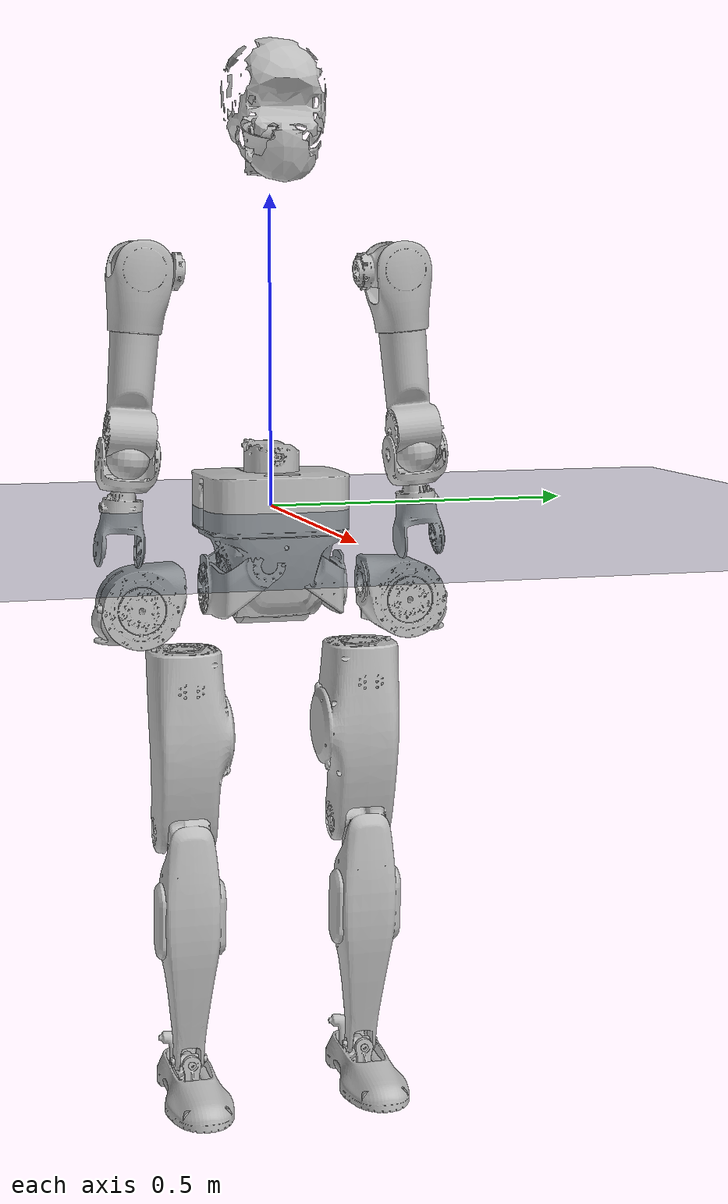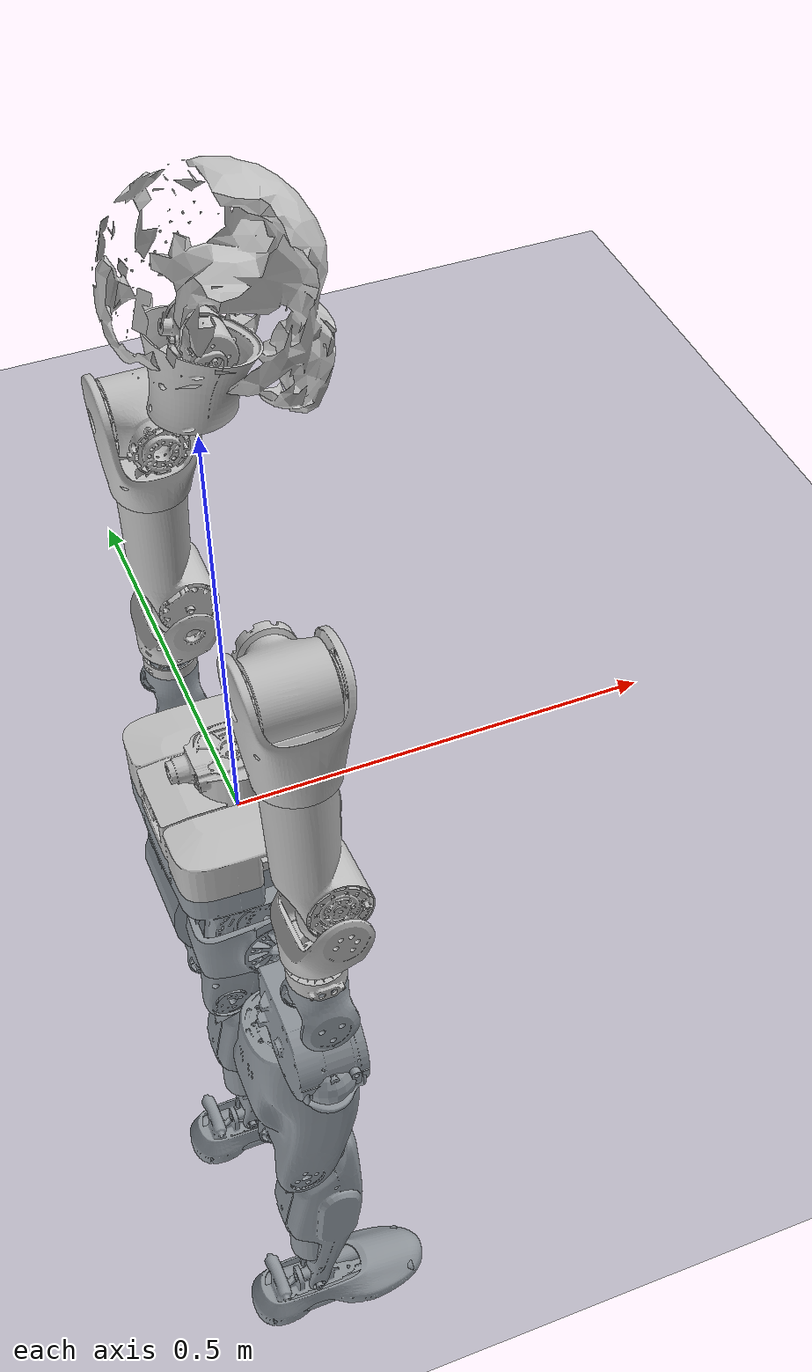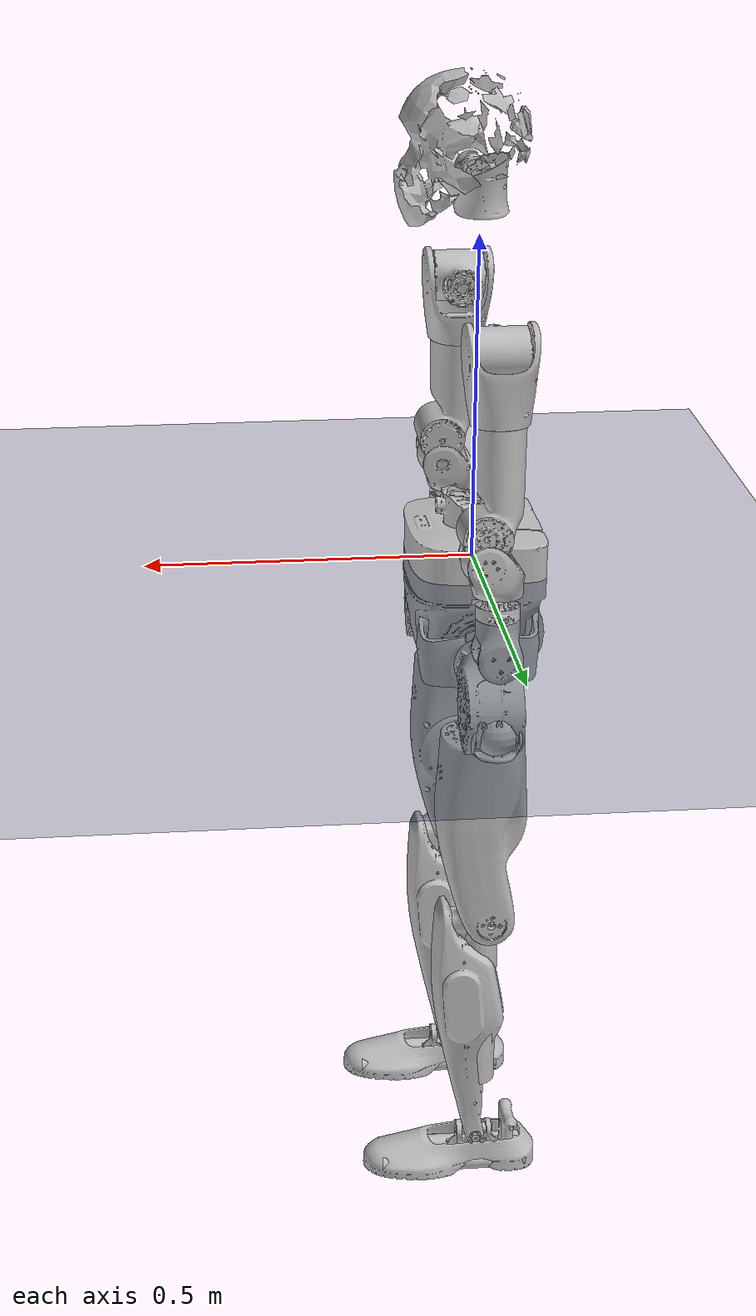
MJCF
<mujoco model="humanoid">
  <compiler angle="radian" meshdir="../meshes/"/>

  <asset>
    <material name="matplane" reflectance="0." texture="texplane" texrepeat="1 1" texuniform="true"/>
    <material name="matplane2" reflectance="0.1" texture="texplane2" texrepeat="1 1" texuniform="true"/>
    <texture name="texplane" type="2d" builtin="checker" rgb1=".2 .3 .4" rgb2=".1 0.15 0.2"
          width="512" height="512" mark="cross" markrgb=".8 .8 .8"/>
    <texture name="texplane2" type="2d" builtin="checker" rgb1="1 0.3137 0.1843" rgb2="0.0 0.30196 0.38039"
          width="512" height="512" mark="cross" markrgb=".8 .8 .8"/>

    <mesh name="pelvis" file="pelvis.STL"/>
    <mesh name="hip_roll_l_link" file="hip_roll_l_link.STL"/>
    <mesh name="hip_pitch_l_link" file="hip_pitch_l_link.STL"/>
    <mesh name="hip_yaw_l_link" file="hip_yaw_l_link.STL"/>
    <mesh name="knee_pitch_l_link" file="knee_pitch_l_link.STL"/>
    <mesh name="ankle_pitch_l_link" file="ankle_pitch_l_link.STL"/>
    <mesh name="ankle_roll_l_link" file="ankle_roll_l_link.STL"/>
    <mesh name="hip_roll_r_link" file="hip_roll_r_link.STL"/>
    <mesh name="hip_pitch_r_link" file="hip_pitch_r_link.STL"/>
    <mesh name="hip_yaw_r_link" file="hip_yaw_r_link.STL"/>
    <mesh name="knee_pitch_r_link" file="knee_pitch_r_link.STL"/>
    <mesh name="ankle_pitch_r_link" file="ankle_pitch_r_link.STL"/>
    <mesh name="ankle_roll_r_link" file="ankle_roll_r_link.STL"/>
    <mesh name="waist_yaw_link" content_type="model/stl" file="waist_yaw_link.STL"/>
    <mesh name="head_yaw_link" file="head_yaw_link.STL"/>
    <mesh name="head_pitch_link" file="head_pitch_link.STL"/>
    <mesh name="head_roll_link" content_type="model/stl" file="head_roll_link.STL"/>
    <mesh name="shoulder_pitch_l_link" content_type="model/stl" file="shoulder_pitch_l_link.STL"/>
    <mesh name="shoulder_roll_l_link" file="shoulder_roll_l_link.STL"/>
    <mesh name="shoulder_yaw_l_link" content_type="model/stl" file="shoulder_yaw_l_link.STL"/>
    <mesh name="elbow_pitch_l_link" content_type="model/stl" file="elbow_pitch_l_link.STL"/>
    <mesh name="elbow_yaw_l_link" content_type="model/stl" file="elbow_yaw_l_link.STL"/>
    <mesh name="wrist_pitch_l_link" content_type="model/stl" file="wrist_pitch_l_link.STL"/>
    <mesh name="wrist_roll_l_link" file="wrist_roll_l_link.STL"/>
    <mesh name="shoulder_pitch_r_link" content_type="model/stl" file="shoulder_pitch_r_link.STL"/>
    <mesh name="shoulder_roll_r_link" content_type="model/stl" file="shoulder_roll_r_link.STL"/>
    <mesh name="shoulder_yaw_r_link" content_type="model/stl" file="shoulder_yaw_r_link.STL"/>
    <mesh name="elbow_pitch_r_link" content_type="model/stl" file="elbow_pitch_r_link.STL"/>
    <mesh name="elbow_yaw_r_link" content_type="model/stl" file="elbow_yaw_r_link.STL"/>
    <mesh name="wrist_pitch_r_link" content_type="model/stl" file="wrist_pitch_r_link.STL"/>
    <mesh name="wrist_roll_r_link" content_type="model/stl" file="wrist_roll_r_link.STL"/>
  </asset>

  <worldbody>
    <light directional="true" diffuse=".4 .4 .4" specular="0.1 0.1 0.1" pos="0 0 5.0" dir="0 0 -1" castshadow="false"/>
    <light directional="true" diffuse=".6 .6 .6" specular="0.2 0.2 0.2" pos="0 0 4" dir="0 0 -1"/>
    <geom name="ground" type="plane" size="10 10 0.01" pos="0.0 0 0" quat="1 0 0 0" material="matplane"/>

    <body name="pelvis">
      <inertial pos="-0.000641 0.000723 -0.074769" quat="1.0 0 0 0" mass="6.09461" diaginertia="0.0295763 0.0281052 0.0185115"/>
      <joint name="dummy_to_base_link" type="free" limited="false" actuatorfrclimited="false"/>

      <geom type="mesh" contype="0" conaffinity="0" group="1" density="0" rgba="0.752941 0.752941 0.752941 1" mesh="pelvis"/>
      <geom size="0.085 0.055" pos="-0.02 0 -0.11" quat="0.707388 0.706825 0 0" type="cylinder" rgba="0.752941 0.752941 0.752941 1"/>
      <body name="hip_roll_l_link" pos="0 0.028 -0.0857">
        <inertial pos="-0.001848 0.055849 -0.036017" quat="-0.248001 0.650774 -0.26447 0.667116" mass="0.672983" diaginertia="0.00353091 0.00296469 0.0010174"/>
        <joint name="hip_roll_l_joint" pos="0 0 0" axis="1 0 0" range="-0.79 0.79" actuatorfrcrange="-160 160"/>
        <geom type="mesh" contype="0" conaffinity="0" group="1" density="0" rgba="0.752941 0.752941 0.752941 1" mesh="hip_roll_l_link"/>
        <body name="hip_pitch_l_link" pos="0 0.122 -0.046">
          <inertial pos="0.001125 0.001644 -0.01177" quat="0.705651 0.0579324 0.0569728 0.703885" mass="4.22793" diaginertia="0.0251351 0.0168268 0.0152311"/>
          <joint name="hip_pitch_l_joint" pos="0 0 0" axis="0 1 0" range="-2.79 2.09" actuatorfrcrange="-300 300"/>
          <geom type="mesh" contype="0" conaffinity="0" group="1" density="0" rgba="0.752941 0.752941 0.752941 1" mesh="hip_pitch_l_link"/>
          <body name="hip_yaw_l_link" pos="0 0 -0.0987">
            <inertial pos="0.00374 -0.005658 -0.117755" quat="0.711961 0.0134004 -0.0106516 0.702011" mass="7.1829" diaginertia="0.0648981 0.057772 0.0228178"/>
            <joint name="hip_yaw_l_joint" pos="0 0 0" axis="0 0 1" range="-1.04 1.04" actuatorfrcrange="-160 160"/>
            <geom type="mesh" contype="0" conaffinity="0" group="1" density="0" rgba="0.752941 0.752941 0.752941 1" mesh="hip_yaw_l_link"/>
            <geom size="0.03 0.1" pos="0 0 -0.1" type="cylinder" rgba="0.752941 0.752941 0.752941 1"/>
            <body name="knee_pitch_l_link" pos="0 -4.2833e-05 -0.3013">
              <inertial pos="0.007489 0.001584 -0.167773" quat="0.746572 -0.012866 -0.0247827 0.664718" mass="3.01799" diaginertia="0.0362398 0.0356959 0.00184529"/>
              <joint name="knee_pitch_l_joint" pos="0 0 0" axis="0 1 0" range="0 2.39" actuatorfrcrange="-300 300"/>
              <geom type="mesh" contype="0" conaffinity="0" group="1" density="0" rgba="0.752941 0.752941 0.752941 1" mesh="knee_pitch_l_link"/>
              <geom size="0.03 0.15" pos="0 0 -0.15" type="cylinder" rgba="0.752941 0.752941 0.752941 1"/>
              <body name="ankle_pitch_l_link" pos="0 0 -0.4">
                <inertial pos="1.23077e-09 5.88533e-10 0" quat="0.5 0.5 -0.5 0.5" mass="0.111609" diaginertia="3.2e-05 1.8e-05 1.8e-05"/>
                <joint name="ankle_pitch_l_joint" pos="0 0 0" axis="0 1 0" range="-1.22 0.5236" actuatorfrcrange="-60 60"/>
                <geom type="mesh" contype="0" conaffinity="0" group="1" density="0" rgba="0.752941 0.752941 0.752941 1" mesh="ankle_pitch_l_link"/>
                <body name="ankle_roll_l_link">
                  <inertial pos="0.021235 -4.62707e-08 -0.032883" quat="-4.10884e-06 0.6645 -9.6485e-06 0.747289" mass="1.01738" diaginertia="0.0063132 0.006055 0.000954799"/>
                  <joint name="ankle_roll_l_joint" pos="0 0 0" axis="1 0 0" range="-0.4363 0.4363" actuatorfrcrange="-30 30"/>
                  <geom type="mesh" contype="0" conaffinity="0" group="1" density="0" rgba="0.752941 0.752941 0.752941 1" mesh="ankle_roll_l_link"/>
                  <geom name="toe1_left" size="0.015 0.115" pos="0.035 0.025 -0.042" quat="0.707105 0 0.707108 0" type="cylinder" rgba="0.752941 0.752941 0.752941 1"/>
                  <geom name="toe2_left" size="0.015 0.115" pos="0.035 -0.025 -0.042" quat="0.707105 0 0.707108 0" type="cylinder" rgba="0.752941 0.752941 0.752941 1"/>
                </body>
              </body>
            </body>
          </body>
        </body>
      </body>
      <body name="hip_roll_r_link" pos="0 -0.028 -0.0857">
        <inertial pos="-0.001848 -0.055849 -0.036017" quat="0.248001 0.650774 0.26447 0.667116" mass="0.672983" diaginertia="0.00353091 0.00296469 0.0010174"/>
        <joint name="hip_roll_r_joint" pos="0 0 0" axis="1 0 0" range="-0.79 0.79" actuatorfrcrange="-160 160"/>
        <geom type="mesh" contype="0" conaffinity="0" group="1" density="0" rgba="0.752941 0.752941 0.752941 1" mesh="hip_roll_r_link"/>
        <body name="hip_pitch_r_link" pos="0 -0.122 -0.046">
          <inertial pos="0.001125 -0.001644 -0.01177" quat="0.703885 0.0569728 0.0579324 0.705651" mass="4.22793" diaginertia="0.0251351 0.0168268 0.0152311"/>
          <joint name="hip_pitch_r_joint" pos="0 0 0" axis="0 1 0" range="-2.79 2.09" actuatorfrcrange="-300 300"/>
          <geom type="mesh" contype="0" conaffinity="0" group="1" density="0" rgba="0.752941 0.752941 0.752941 1" mesh="hip_pitch_r_link"/>
          <body name="hip_yaw_r_link" pos="0 0 -0.0987">
            <inertial pos="0.00374 0.005658 -0.117755" quat="0.702011 -0.0106516 0.0134004 0.711961" mass="7.1829" diaginertia="0.0648981 0.057772 0.0228178"/>
            <joint name="hip_yaw_r_joint" pos="0 0 0" axis="0 0 1" range="-1.04 1.04" actuatorfrcrange="-160 160"/>
            <geom type="mesh" contype="0" conaffinity="0" group="1" density="0" rgba="0.752941 0.752941 0.752941 1" mesh="hip_yaw_r_link"/>
            <geom size="0.03 0.1" pos="0 0 -0.1" type="cylinder" rgba="0.752941 0.752941 0.752941 1"/>
            <body name="knee_pitch_r_link" pos="0 0.00015001 -0.3013">
              <inertial pos="0.007489 -0.001584 -0.167773" quat="0.664718 -0.0247827 -0.012866 0.746572" mass="3.01799" diaginertia="0.0362398 0.0356959 0.00184529"/>
              <joint name="knee_pitch_r_joint" pos="0 0 0" axis="0 1 0" range="0 2.39" actuatorfrcrange="-300 300"/>
              <geom type="mesh" contype="0" conaffinity="0" group="1" density="0" rgba="0.752941 0.752941 0.752941 1" mesh="knee_pitch_r_link"/>
              <geom size="0.03 0.15" pos="0 0 -0.15" type="cylinder" rgba="0.752941 0.752941 0.752941 1"/>
              <body name="ankle_pitch_r_link" pos="0 0.00074981 -0.4">
                <inertial pos="1.23077e-09 -5.88533e-10 0" quat="0.5 0.5 -0.5 0.5" mass="0.111609" diaginertia="3.2e-05 1.8e-05 1.8e-05"/>
                <joint name="ankle_pitch_r_joint" pos="0 0 0" axis="0 1 0" range="-1.22 0.5236" actuatorfrcrange="-60 60"/>
                <geom type="mesh" contype="0" conaffinity="0" group="1" density="0" rgba="0.752941 0.752941 0.752941 1" mesh="ankle_pitch_r_link"/>
                <body name="ankle_roll_r_link">
                  <inertial pos="0.021235 4.62707e-08 -0.032883" quat="4.10884e-06 0.6645 9.6485e-06 0.747289" mass="1.01738" diaginertia="0.0063132 0.006055 0.000954799"/>
                  <joint name="ankle_roll_r_joint" pos="0 0 0" axis="1 0 0" range="-0.4363 0.4363" actuatorfrcrange="-30 30"/>
                  <geom type="mesh" contype="0" conaffinity="0" group="1" density="0" rgba="0.752941 0.752941 0.752941 1" mesh="ankle_roll_r_link"/>
                  <geom name="toe1_right" size="0.015 0.115" pos="0.035 0.025 -0.042" quat="0.707105 0 0.707108 0" type="cylinder" rgba="0.752941 0.752941 0.752941 1"/>
                  <geom name="toe2_right" size="0.015 0.115" pos="0.035 -0.025 -0.042" quat="0.707105 0 0.707108 0" type="cylinder" rgba="0.752941 0.752941 0.752941 1"/>
                </body>
              </body>
            </body>
          </body>
        </body>
      </body>
      <body name="waist_yaw_link">
        <inertial pos="0.00128422 0.000613544 0.250606" quat="0.999859 -0.000999479 0.0163533 -0.00359851" mass="23.5819" diaginertia="0.602677 0.555345 0.181915"/>
        <joint name="waist_yaw_joint" pos="0 0 0" axis="0 0 1" range="-2.96 3.14" actuatorfrcrange="-120 120"/>
        <geom type="mesh" contype="0" conaffinity="0" group="1" density="0" rgba="0.752941 0.752941 0.752941 1" mesh="waist_yaw_link"/>
        <geom pos="-0.002 0 0.56508" quat="1 0 0 0" type="mesh" contype="0" conaffinity="0" group="1" density="0" rgba="0.752941 0.752941 0.752941 1" mesh="head_yaw_link"/>
        <geom pos="0.01255 0 0.59548" quat="0.991445 0 0.130526 0" type="mesh" contype="0" conaffinity="0" group="1" density="0" rgba="0.752941 0.752941 0.752941 1" mesh="head_pitch_link"/>
        <geom pos="0.01255 0 0.59548" quat="0.991445 0 0.130526 0" type="mesh" contype="0" conaffinity="0" group="1" density="0" rgba="0.752941 0.752941 0.752941 1" mesh="head_roll_link"/>
        <body name="shoulder_pitch_l_link" pos="0 0.14539 0.37721" quat="0.999048 0.0436192 0 0">
          <inertial pos="0.00754 0.064361 -3.7e-05" quat="0.401219 0.582335 -0.401019 0.582317" mass="1.03063" diaginertia="0.000636 0.000545537 0.000470463"/>
          <joint name="shoulder_pitch_l_joint" pos="0 0 0" axis="0 1 0" range="-2.96 2.96" actuatorfrcrange="-91 91"/>
          <geom type="mesh" contype="0" conaffinity="0" group="1" density="0" rgba="0.752941 0.752941 0.752941 1" mesh="shoulder_pitch_l_link"/>
          <body name="shoulder_roll_l_link" pos="0 0.068 0">
            <inertial pos="0.00106653 0.00220629 -0.0441161" quat="0.7082 -0.00329147 -0.0128765 0.705886" mass="0.412601" diaginertia="0.00126407 0.000939019 0.000895909"/>
            <joint name="shoulder_roll_l_joint" pos="0 0 0" axis="1 0 0" range="-0.2618 3.4" actuatorfrcrange="-60 60"/>
            <geom type="mesh" contype="0" conaffinity="0" group="1" density="0" rgba="0.752941 0.752941 0.752941 1" mesh="shoulder_roll_l_link"/>
            <geom size="0.035" rgba="0.752941 0.752941 0.752941 1"/>
            <body name="shoulder_yaw_l_link" pos="0 0 -0.1025">
              <inertial pos="0.008387 0.00373 -0.11229" quat="0.95062 -0.00536915 0.0606486 0.304326" mass="1.3076" diaginertia="0.00944038 0.00923249 0.000707129"/>
              <joint name="shoulder_yaw_l_joint" pos="0 0 0" axis="0 0 1" range="-2.96 2.96" actuatorfrcrange="-30 30"/>
              <geom type="mesh" contype="0" conaffinity="0" group="1" density="0" rgba="0.752941 0.752941 0.752941 1" mesh="shoulder_yaw_l_link"/>
              <body name="elbow_pitch_l_link" pos="0.02 0 -0.1975">
                <inertial pos="-0.018146 0.00127303 -0.139655" quat="0.999962 -0.000432315 -0.00240809 0.00834501" mass="1.54484" diaginertia="0.0119436 0.0117928 0.000996259"/>
                <joint name="elbow_pitch_l_joint" pos="0 0 0" axis="0 1 0" range="-2.61 0.261" actuatorfrcrange="-30 30"/>
                <geom type="mesh" contype="0" conaffinity="0" group="1" density="0" rgba="0.752941 0.752941 0.752941 1" mesh="elbow_pitch_l_link"/>
                <geom size="0.035" rgba="0.752941 0.752941 0.752941 1"/>
                <body name="elbow_yaw_l_link" pos="-0.02 0 -0.0543">
                  <inertial pos="8e-05 0.00115 -0.069083" quat="0.999899 -0.012607 0.000668448 0.00659261" mass="0.990079" diaginertia="0.00296102 0.00287955 0.000420432"/>
                  <joint name="elbow_yaw_l_joint" pos="0 0 0" axis="0 0 1" range="-2.9671 2.9671" actuatorfrcrange="-15 15"/>
                  <geom type="mesh" contype="0" conaffinity="0" group="1" density="0" rgba="0.752941 0.752941 0.752941 1" mesh="elbow_yaw_l_link"/>
                  <body name="wrist_pitch_l_link" pos="0 0.002 -0.1887">
                    <inertial pos="0.005341 0.000652 -0.018511" quat="0.314863 0.66524 0.28303 0.614988" mass="0.266415" diaginertia="0.000116841 0.000110463 7.36959e-05"/>
                    <joint name="wrist_pitch_l_joint" pos="0 0 0" axis="0 1 0" range="-1.3 1.65" actuatorfrcrange="-9 9"/>
                    <geom type="mesh" contype="0" conaffinity="0" group="1" density="0" rgba="0.752941 0.752941 0.752941 1" mesh="wrist_pitch_l_link"/>
                    <body name="wrist_roll_l_link" pos="5.0485e-05 0 -0.02">
                      <inertial pos="0.001596 0.000155 -0.018822" quat="0.497592 0.500808 0.515059 0.486114" mass="0.065684" diaginertia="7.30062e-05 6.40263e-05 3.29676e-05"/>
                      <joint name="wrist_roll_l_joint" pos="0 0 0" axis="1 0 0" range="-1.04 0.785" actuatorfrcrange="-9 9"/>
                      <geom type="mesh" contype="0" conaffinity="0" group="1" density="0" rgba="0.752941 0.752941 0.752941 1" mesh="wrist_roll_l_link"/>
                      <geom size="0.035" rgba="0.752941 0.752941 0.752941 1"/>
                    </body>
                  </body>
                </body>
              </body>
            </body>
          </body>
        </body>
        <body name="shoulder_pitch_r_link" pos="0 -0.14539 0.37721" quat="0.999048 -0.0436192 0 0">
          <inertial pos="0.00754 -0.064361 -3.7e-05" quat="0.582335 0.401219 -0.582317 0.401019" mass="1.03063" diaginertia="0.000636 0.000545537 0.000470463"/>
          <joint name="shoulder_pitch_r_joint" pos="0 0 0" axis="0 1 0" range="-2.96 2.96" actuatorfrcrange="-91 91"/>
          <geom type="mesh" contype="0" conaffinity="0" group="1" density="0" rgba="0.752941 0.752941 0.752941 1" mesh="shoulder_pitch_r_link"/>
          <body name="shoulder_roll_r_link" pos="0 -0.068 0">
            <inertial pos="0.00106653 -0.00220629 -0.0441161" quat="0.705886 -0.0128765 -0.00329147 0.7082" mass="0.412601" diaginertia="0.00126407 0.000939019 0.000895909"/>
            <joint name="shoulder_roll_r_joint" pos="0 0 0" axis="1 0 0" range="-3.4 0.2618" actuatorfrcrange="-60 60"/>
            <geom type="mesh" contype="0" conaffinity="0" group="1" density="0" rgba="0.752941 0.752941 0.752941 1" mesh="shoulder_roll_r_link"/>
            <geom size="0.035" rgba="0.752941 0.752941 0.752941 1"/>
            <body name="shoulder_yaw_r_link" pos="0 0 -0.1025">
              <inertial pos="0.008387 -0.00373 -0.11229" quat="0.95062 0.00536915 0.0606486 -0.304326" mass="1.3076" diaginertia="0.00944038 0.00923249 0.000707129"/>
              <joint name="shoulder_yaw_r_joint" pos="0 0 0" axis="0 0 1" range="-2.96 2.96" actuatorfrcrange="-30 30"/>
              <geom type="mesh" contype="0" conaffinity="0" group="1" density="0" rgba="0.752941 0.752941 0.752941 1" mesh="shoulder_yaw_r_link"/>
              <body name="elbow_pitch_r_link" pos="0.02 0 -0.1975">
                <inertial pos="-0.018146 0.000201023 -0.139655" quat="0.999931 -0.00706838 -0.00234929 0.00907127" mass="1.54484" diaginertia="0.011946 0.0117949 0.000996562"/>
                <joint name="elbow_pitch_r_joint" pos="0 0 0" axis="0 1 0" range="-2.61 0.261" actuatorfrcrange="-30 30"/>
                <geom type="mesh" contype="0" conaffinity="0" group="1" density="0" rgba="0.752941 0.752941 0.752941 1" mesh="elbow_pitch_r_link"/>
                <geom size="0.035" rgba="0.752941 0.752941 0.752941 1"/>
                <body name="elbow_yaw_r_link" pos="-0.02 0 -0.0543">
                  <inertial pos="8e-05 0.00115 -0.069083" quat="0.999899 -0.012607 0.000668448 0.00659261" mass="0.990079" diaginertia="0.00296102 0.00287955 0.000420432"/>
                  <joint name="elbow_yaw_r_joint" pos="0 0 0" axis="0 0 1" range="-2.9671 2.9671" actuatorfrcrange="-15 15"/>
                  <geom type="mesh" contype="0" conaffinity="0" group="1" density="0" rgba="0.752941 0.752941 0.752941 1" mesh="elbow_yaw_r_link"/>
                  <body name="wrist_pitch_r_link" pos="0 -0.002 -0.1887">
                    <inertial pos="0.005341 -0.000652 -0.018511" quat="0.614988 0.28303 0.66524 0.314863" mass="0.266415" diaginertia="0.000116841 0.000110463 7.36959e-05"/>
                    <joint name="wrist_pitch_r_joint" pos="0 0 0" axis="0 1 0" range="-1.3 1.65" actuatorfrcrange="-9 9"/>
                    <geom type="mesh" contype="0" conaffinity="0" group="1" density="0" rgba="0.752941 0.752941 0.752941 1" mesh="wrist_pitch_r_link"/>
                    <body name="wrist_roll_r_link" pos="5.0485e-05 0 -0.02">
                      <inertial pos="0.001596 -0.000155 -0.018822" quat="0.486114 0.515059 0.500808 0.497592" mass="0.065684" diaginertia="7.30062e-05 6.40263e-05 3.29676e-05"/>
                      <joint name="wrist_roll_r_joint" pos="0 0 0" axis="1 0 0" range="-1.04 0.785" actuatorfrcrange="-9 9"/>
                      <geom type="mesh" contype="0" conaffinity="0" group="1" density="0" rgba="0.752941 0.752941 0.752941 1" mesh="wrist_roll_r_link"/>
                      <geom size="0.035" rgba="0.752941 0.752941 0.752941 1"/>
                    </body>
                  </body>
                </body>
              </body>
            </body>
          </body>
        </body>
      </body>
    </body>
  </worldbody>
</mujoco>
